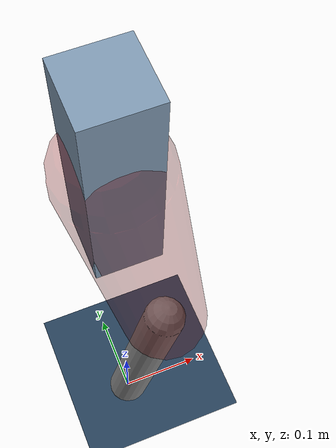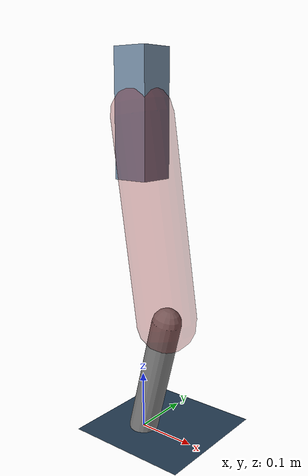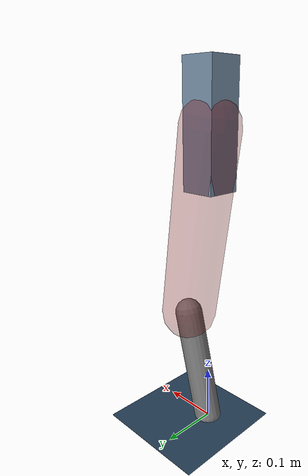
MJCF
<mujoco model="Hopper2D">
	<compiler inertiafromgeom="true" angle="radian" />
	<option timestep="0.001" integrator="implicit" cone="elliptic" solver="Newton" tolerance="1e-10" />

	<default>
		<geom contype="1" conaffinity="1" condim="3" friction="2 0.005 0.0001" solref="0.005 1" />
		<joint limited="true" damping="0.1" />
	</default>

	<asset>
		<texture name="skybox" type="skybox" builtin="gradient" rgb1=".4 .6 .8" rgb2="0 0 0" width="800" height="800" />
		<texture name="grid" type="2d" builtin="checker" rgb1=".1 .2 .3" rgb2=".2 .3 .4" width="300" height="300" mark="edge" markrgb=".2 .3 .4" />
		<material name="ground" texture="grid" texrepeat="1 1" texuniform="true" reflectance="0.1" />
		<material name="leg" rgba="0.5 0.6 0.7 1" />
	</asset>

	<worldbody>

		<geom name="floor" type="plane" size="5 5 0.25" material="ground" />

		<light directional="false" diffuse="0.8 0.8 0.8" specular="0.3 0.3 0.3" pos="0 0 2" dir="0 0 -1" />
		<light mode="targetbodycom" target="base" directional="false" diffuse="0.8 0.8 0.8" specular="0.3 0.3 0.3" pos="0 0 2" dir="0 0 -1" />

		<camera name="fixed" pos="0 -2 1" xyaxes="1 0 0 0 0 1" />
		<camera name="tracking" mode="trackcom" pos="0 -3 1" />

		<body name="root" pos="0 0 0.5388533145456061">
			<joint name="slide_x" type="slide" axis="1 0 0" range="-100 100" />
			<joint name="slide_z" type="slide" axis="0 0 1" range="0 10" />

			<body name="base" pos="0 0 0">
				<geom name="torso" type="box" size="0.03 0.03 0.1" mass="3.827" material="leg" />

				<body name="link1" pos="0 0 0" euler="0 1.4192611659169632 0">
					<joint type="hinge" axis="0 -1 0" pos="0 0 0" name="hinge1" limited="true" range="-3.14 3.14" stiffness="0" damping="0.1" />
					<geom name="thigh" type="capsule" fromto="0 0 0 0.33623102913425507 0 0" size="0.05" rgba="0.5 0 0 0.3" mass="1.088146881575914" />

					<body name="link2" pos="0.33623102913425507 0 0" euler="0 0.3925771603265734 0">
						<joint type="hinge" axis="0 -1 0" pos="0 0 0" name="hinge2" limited="true" range="-3.14 3.14" stiffness="0" damping="0.1" />
						<geom name="shank" type="capsule" fromto="0 0 0 0.2126222854113511 0 0" size="0.025" mass="0.4114978283290809" />

					</body>
				</body>
			</body>
		</body>
	</worldbody>

	<actuator>
		<motor name="torque1" joint="hinge1" ctrlrange="-159.75425330844837 159.75425330844837" ctrllimited="true" gear="1" />
		<motor name="torque2" joint="hinge2" ctrlrange="-122.28120260123204 122.28120260123204" ctrllimited="true" gear="1" />
	</actuator>
</mujoco>
